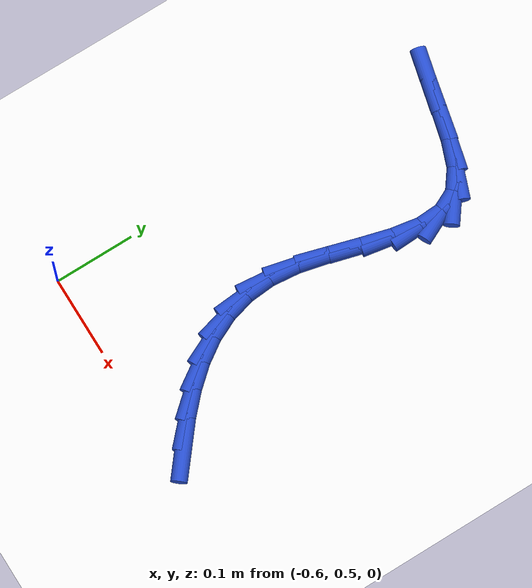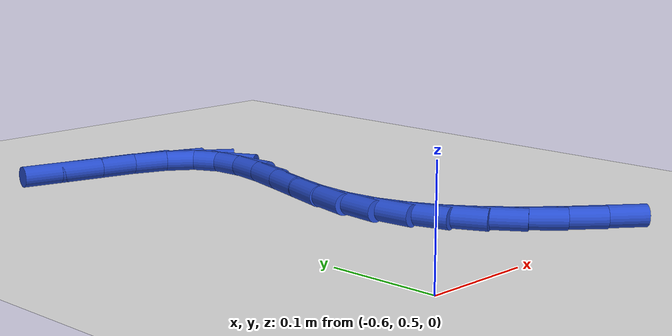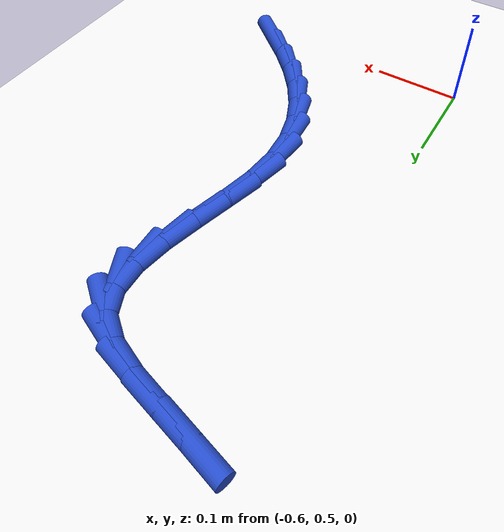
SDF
<sdf version="1.6">
 <world name="default">
  <model name="ground_plane">
   <static>1</static>
   <link name="link">
    <collision name="collision">
     <geometry><plane><normal>0 0 1</normal><size>100 100</size></plane></geometry>
     <surface><friction><ode><mu>100</mu><mu2>50</mu2></ode></friction></surface>
    </collision>
    <visual name="visual">
     <cast_shadows>0</cast_shadows>
     <geometry><plane><normal>0 0 1</normal><size>100 100</size></plane></geometry>
     <material>
      <script><uri>file://media/materials/scripts/gazebo.material</uri><name>Gazebo/WhiteGlow</name></script>
     </material>
    </visual>
   </link>
  </model>
  <model name="line">
   <link name="link_19">
    <pose>-0.3534015648300535 0.5199860173216279 0.01 0 1.57 -0.6793957695988381</pose>
    <collision name="collision">
     <geometry><cylinder><radius>0.01</radius><length>0.08</length></cylinder></geometry>
    </collision>
    <visual name="visual">
     <material>
      <script><name>Gazebo/Blue</name><uri>file://media/materials/scripts/gazebo.material</uri></script>
     </material>
     <geometry><cylinder><radius>0.01</radius><length>0.08</length></cylinder></geometry>
    </visual>
   </link>
   <link name="link_20">
    <pose>-0.3812828912030363 0.5425047192604844 0.01 0 1.57 -0.7532653489869112</pose>
    <collision name="collision">
     <geometry><cylinder><radius>0.01</radius><length>0.08</length></cylinder></geometry>
    </collision>
    <visual name="visual">
     <material>
      <script><name>Gazebo/Blue</name><uri>file://media/materials/scripts/gazebo.material</uri></script>
     </material>
     <geometry><cylinder><radius>0.01</radius><length>0.08</length></cylinder></geometry>
    </visual>
   </link>
   <link name="link_21">
    <pose>-0.40644544729871046 0.5661000090946204 0.01 0 1.57 -0.8511319285466248</pose>
    <collision name="collision">
     <geometry><cylinder><radius>0.01</radius><length>0.08</length></cylinder></geometry>
    </collision>
    <visual name="visual">
     <material>
      <script><name>Gazebo/Blue</name><uri>file://media/materials/scripts/gazebo.material</uri></script>
     </material>
     <geometry><cylinder><radius>0.01</radius><length>0.08</length></cylinder></geometry>
    </visual>
   </link>
   <link name="link_22">
    <pose>-0.4282962428381285 0.5910303410449991 0.01 0 1.57 -0.9759477097483894</pose>
    <collision name="collision">
     <geometry><cylinder><radius>0.01</radius><length>0.08</length></cylinder></geometry>
    </collision>
    <visual name="visual">
     <material>
      <script><name>Gazebo/Blue</name><uri>file://media/materials/scripts/gazebo.material</uri></script>
     </material>
     <geometry><cylinder><radius>0.01</radius><length>0.08</length></cylinder></geometry>
    </visual>
   </link>
   <link name="link_23">
    <pose>-0.44624228754234285 0.6175541693325827 0.01 0 1.57 -1.1282164633529859</pose>
    <collision name="collision">
     <geometry><cylinder><radius>0.01</radius><length>0.08</length></cylinder></geometry>
    </collision>
    <visual name="visual">
     <material>
      <script><name>Gazebo/Blue</name><uri>file://media/materials/scripts/gazebo.material</uri></script>
     </material>
     <geometry><cylinder><radius>0.01</radius><length>0.08</length></cylinder></geometry>
    </visual>
   </link>
   <link name="link_24">
    <pose>-0.4596905911324059 0.6459299481783345 0.01 0 1.57 -1.30322708645775</pose>
    <collision name="collision">
     <geometry><cylinder><radius>0.01</radius><length>0.08</length></cylinder></geometry>
    </collision>
    <visual name="visual">
     <material>
      <script><name>Gazebo/Blue</name><uri>file://media/materials/scripts/gazebo.material</uri></script>
     </material>
     <geometry><cylinder><radius>0.01</radius><length>0.08</length></cylinder></geometry>
    </visual>
   </link>
   <link name="link_25">
    <pose>-0.46804816332937044 0.6764161318032174 0.01 0 1.57 -1.4895920281579804</pose>
    <collision name="collision">
     <geometry><cylinder><radius>0.01</radius><length>0.08</length></cylinder></geometry>
    </collision>
    <visual name="visual">
     <material>
      <script><name>Gazebo/Blue</name><uri>file://media/materials/scripts/gazebo.material</uri></script>
     </material>
     <geometry><cylinder><radius>0.01</radius><length>0.08</length></cylinder></geometry>
    </visual>
   </link>
   <link name="link_26">
    <pose>-0.47072201385428825 0.7092711744281934 0.01 0 1.57 1.4707584314168691</pose>
    <collision name="collision">
     <geometry><cylinder><radius>0.01</radius><length>0.08</length></cylinder></geometry>
    </collision>
    <visual name="visual">
     <material>
      <script><name>Gazebo/Blue</name><uri>file://media/materials/scripts/gazebo.material</uri></script>
     </material>
     <geometry><cylinder><radius>0.01</radius><length>0.08</length></cylinder></geometry>
    </visual>
   </link>
   <link name="link_27">
    <pose>-0.46716271543037835 0.7447319081786529 0.01 0 1.57 1.341338182621031</pose>
    <collision name="collision">
     <geometry><cylinder><radius>0.01</radius><length>0.08</length></cylinder></geometry>
    </collision>
    <visual name="visual">
     <material>
      <script><name>Gazebo/Blue</name><uri>file://media/materials/scripts/gazebo.material</uri></script>
     </material>
     <geometry><cylinder><radius>0.01</radius><length>0.08</length></cylinder></geometry>
    </visual>
   </link>
   <link name="link_28">
    <pose>-0.4583991243492406 0.7822517986427662 0.01 0 1.57 1.2904919899445115</pose>
    <collision name="collision">
     <geometry><cylinder><radius>0.01</radius><length>0.08</length></cylinder></geometry>
    </collision>
    <visual name="visual">
     <material>
      <script><name>Gazebo/Blue</name><uri>file://media/materials/scripts/gazebo.material</uri></script>
     </material>
     <geometry><cylinder><radius>0.01</radius><length>0.08</length></cylinder></geometry>
    </visual>
   </link>
   <link name="link_29">
    <pose>-0.4474460662436757 0.8202985937867253 0.01 0 1.57 1.306655985645283</pose>
    <collision name="collision">
     <geometry><cylinder><radius>0.01</radius><length>0.08</length></cylinder></geometry>
    </collision>
    <visual name="visual">
     <material>
      <script><name>Gazebo/Blue</name><uri>file://media/materials/scripts/gazebo.material</uri></script>
     </material>
     <geometry><cylinder><radius>0.01</radius><length>0.08</length></cylinder></geometry>
    </visual>
   </link>
   <link name="link_30">
    <pose>-0.437444818693914 0.8572772783153101 0.01 0 1.57 1.4002964739328356</pose>
    <collision name="collision">
     <geometry><cylinder><radius>0.01</radius><length>0.08</length></cylinder></geometry>
    </collision>
    <visual name="visual">
     <material>
      <script><name>Gazebo/Blue</name><uri>file://media/materials/scripts/gazebo.material</uri></script>
     </material>
     <geometry><cylinder><radius>0.01</radius><length>0.08</length></cylinder></geometry>
    </visual>
   </link>
   <link name="link_31">
    <pose>-0.4315366592801862 0.8915928369333002 0.01 0 1.57 -1.526702495522563</pose>
    <collision name="collision">
     <geometry><cylinder><radius>0.01</radius><length>0.08</length></cylinder></geometry>
    </collision>
    <visual name="visual">
     <material>
      <script><name>Gazebo/Blue</name><uri>file://media/materials/scripts/gazebo.material</uri></script>
     </material>
     <geometry><cylinder><radius>0.01</radius><length>0.08</length></cylinder></geometry>
    </visual>
   </link>
   <link name="link_32">
    <pose>-0.43286286558272274 0.9216502543454757 0.01 0 1.57 -1.1204673625346468</pose>
    <collision name="collision">
     <geometry><cylinder><radius>0.01</radius><length>0.08</length></cylinder></geometry>
    </collision>
    <visual name="visual">
     <material>
      <script><name>Gazebo/Blue</name><uri>file://media/materials/scripts/gazebo.material</uri></script>
     </material>
     <geometry><cylinder><radius>0.01</radius><length>0.08</length></cylinder></geometry>
    </visual>
   </link>
   <link name="link_33">
    <pose>-0.4445646853662194 0.9458545299295772 0.01 0 1.57 -0.6320719578579088</pose>
    <collision name="collision">
     <geometry><cylinder><radius>0.01</radius><length>0.08</length></cylinder></geometry>
    </collision>
    <visual name="visual">
     <material>
      <script><name>Gazebo/Blue</name><uri>file://media/materials/scripts/gazebo.material</uri></script>
     </material>
     <geometry><cylinder><radius>0.01</radius><length>0.08</length></cylinder></geometry>
    </visual>
   </link>
   <link name="link_34">
    <pose>-0.4683856982567521 0.9632984900398741 0.01 0 1.57 -0.3613437334460103</pose>
    <collision name="collision">
     <geometry><cylinder><radius>0.01</radius><length>0.08</length></cylinder></geometry>
    </collision>
    <visual name="visual">
     <material>
      <script><name>Gazebo/Blue</name><uri>file://media/materials/scripts/gazebo.material</uri></script>
     </material>
     <geometry><cylinder><radius>0.01</radius><length>0.08</length></cylinder></geometry>
    </visual>
   </link>
   <link name="link_35">
    <pose>-0.5009369166591825 0.9756008239991414 0.01 0 1.57 -0.24959799395603197</pose>
    <collision name="collision">
     <geometry><cylinder><radius>0.01</radius><length>0.08</length></cylinder></geometry>
    </collision>
    <visual name="visual">
     <material>
      <script><name>Gazebo/Blue</name><uri>file://media/materials/scripts/gazebo.material</uri></script>
     </material>
     <geometry><cylinder><radius>0.01</radius><length>0.08</length></cylinder></geometry>
    </visual>
   </link>
   <link name="link_36">
    <pose>-0.5376514940819966 0.9849598745550893 0.01 0 1.57 -0.2292153591801549</pose>
    <collision name="collision">
     <geometry><cylinder><radius>0.01</radius><length>0.08</length></cylinder></geometry>
    </collision>
    <visual name="visual">
     <material>
      <script><name>Gazebo/Blue</name><uri>file://media/materials/scripts/gazebo.material</uri></script>
     </material>
     <geometry><cylinder><radius>0.01</radius><length>0.08</length></cylinder></geometry>
    </visual>
   </link>
   <link name="link_37">
    <pose>-0.5741827053642955 0.9934831854203502 0.01 0 1.57 -0.24431994710885363</pose>
    <collision name="collision">
     <geometry><cylinder><radius>0.01</radius><length>0.08</length></cylinder></geometry>
    </collision>
    <visual name="visual">
     <material>
      <script><name>Gazebo/Blue</name><uri>file://media/materials/scripts/gazebo.material</uri></script>
     </material>
     <geometry><cylinder><radius>0.01</radius><length>0.08</length></cylinder></geometry>
    </visual>
   </link>
  </model>
 </world>
</sdf>
